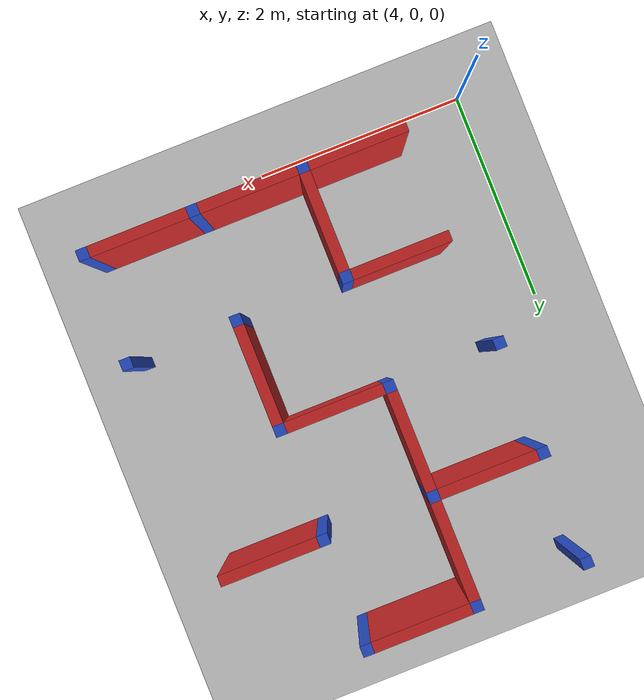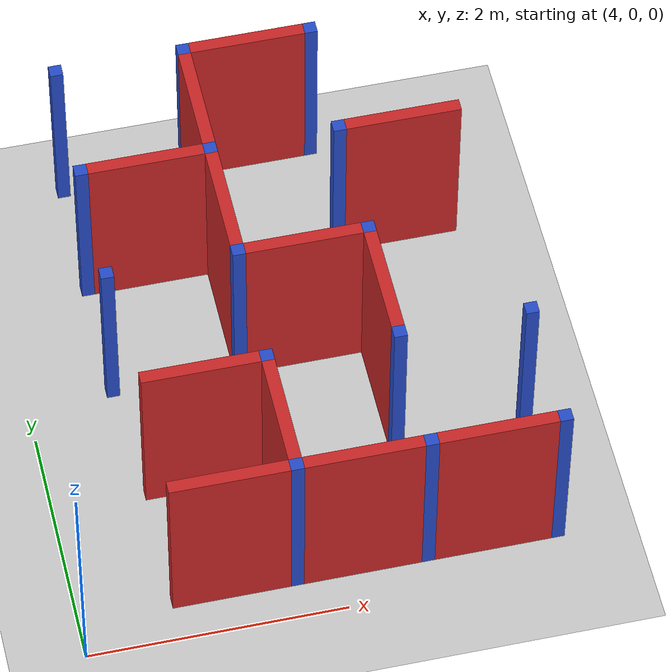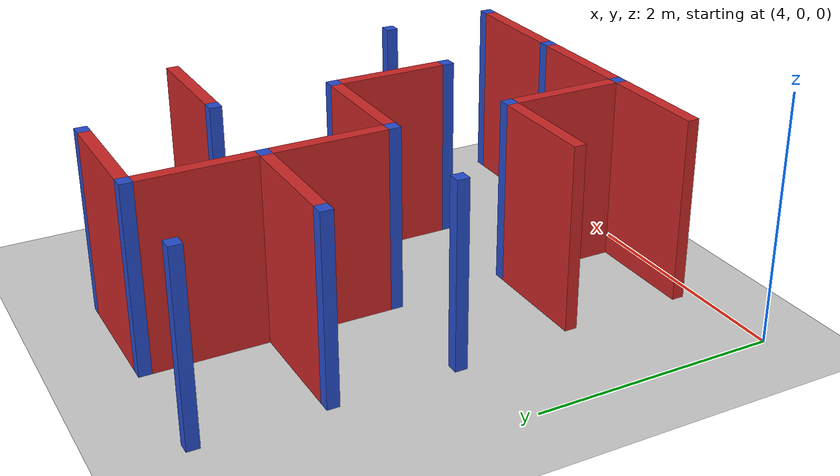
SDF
<sdf version="1.7">
 <world name="default">
  <model name="ground_plane">
   <static>1</static>
   <link name="link">
    <collision name="collision">
     <geometry><plane><normal>0 0 1</normal><size>100 100</size></plane></geometry>
     <surface><friction><ode><mu>100</mu><mu2>50</mu2></ode></friction></surface>
    </collision>
    <visual name="visual">
     <cast_shadows>0</cast_shadows>
     <geometry><plane><normal>0 0 1</normal><size>100 100</size></plane></geometry>
     <material>
      <script><uri>file://media/materials/scripts/gazebo.material</uri><name>Gazebo/Grey</name></script>
     </material>
    </visual>
   </link>
  </model>
  <model name="maze_demo">
   <link name="Joint_10_-11">
    <pose>10 -11 0 0 -0 0</pose>
    <visual name="Wall_2_Visual">
     <pose>0 0 0.75 0 -0 0</pose>
     <geometry><box><size>0.1 0.1 1.5</size></box></geometry>
     <material>
      <script><uri>file://media/materials/scripts/gazebo.material</uri><name>Gazebo/Blue</name></script>
      <ambient>0.996078 0.47451 0.0196078 1</ambient>
      <shader type="pixel"/>
     </material>
     <meta><layer>0</layer></meta>
    </visual>
    <collision name="Wall_2_Collision">
     <pose>0 0 0.75 0 -0 0</pose>
     <geometry><box><size>0.1 0.1 1.5</size></box></geometry>
     <surface>
      <friction>
       <ode><mu>1</mu><mu2>1</mu2><fdir1>0 0 0</fdir1><slip1>0</slip1><slip2>0</slip2></ode>
       <torsional>
        <coefficient>1</coefficient>
        <patch_radius>0</patch_radius>
        <surface_radius>0</surface_radius>
        <use_patch_radius>1</use_patch_radius>
        <ode><slip>0</slip></ode>
       </torsional>
      </friction>
      <bounce><restitution_coefficient>0</restitution_coefficient><threshold>1e+06</threshold></bounce>
      <contact>
       <collide_without_contact>0</collide_without_contact>
       <collide_without_contact_bitmask>1</collide_without_contact_bitmask>
       <collide_bitmask>1</collide_bitmask>
       <ode>
        <soft_cfm>0</soft_cfm>
        <soft_erp>0.2</soft_erp>
        <kp>1e+13</kp>
        <kd>1</kd>
        <max_vel>0.01</max_vel>
        <min_depth>0</min_depth>
       </ode>
       <bullet>
        <split_impulse>1</split_impulse>
        <split_impulse_penetration_threshold>-0.01</split_impulse_penetration_threshold>
        <soft_cfm>0</soft_cfm>
        <soft_erp>0.2</soft_erp>
        <kp>1e+13</kp>
        <kd>1</kd>
       </bullet>
      </contact>
     </surface>
    </collision>
   </link>
   <link name="Joint_10_-12">
    <pose>10 -12 0 0 -0 0</pose>
    <visual name="Wall_2_Visual">
     <pose>0 0 0.75 0 -0 0</pose>
     <geometry><box><size>0.1 0.1 1.5</size></box></geometry>
     <material>
      <script><uri>file://media/materials/scripts/gazebo.material</uri><name>Gazebo/Blue</name></script>
      <ambient>0.996078 0.47451 0.0196078 1</ambient>
      <shader type="pixel"/>
     </material>
     <meta><layer>0</layer></meta>
    </visual>
    <collision name="Wall_2_Collision">
     <pose>0 0 0.75 0 -0 0</pose>
     <geometry><box><size>0.1 0.1 1.5</size></box></geometry>
     <surface>
      <friction>
       <ode><mu>1</mu><mu2>1</mu2><fdir1>0 0 0</fdir1><slip1>0</slip1><slip2>0</slip2></ode>
       <torsional>
        <coefficient>1</coefficient>
        <patch_radius>0</patch_radius>
        <surface_radius>0</surface_radius>
        <use_patch_radius>1</use_patch_radius>
        <ode><slip>0</slip></ode>
       </torsional>
      </friction>
      <bounce><restitution_coefficient>0</restitution_coefficient><threshold>1e+06</threshold></bounce>
      <contact>
       <collide_without_contact>0</collide_without_contact>
       <collide_without_contact_bitmask>1</collide_without_contact_bitmask>
       <collide_bitmask>1</collide_bitmask>
       <ode>
        <soft_cfm>0</soft_cfm>
        <soft_erp>0.2</soft_erp>
        <kp>1e+13</kp>
        <kd>1</kd>
        <max_vel>0.01</max_vel>
        <min_depth>0</min_depth>
       </ode>
       <bullet>
        <split_impulse>1</split_impulse>
        <split_impulse_penetration_threshold>-0.01</split_impulse_penetration_threshold>
        <soft_cfm>0</soft_cfm>
        <soft_erp>0.2</soft_erp>
        <kp>1e+13</kp>
        <kd>1</kd>
       </bullet>
      </contact>
     </surface>
    </collision>
   </link>
   <link name="Joint_10_-13">
    <pose>10 -13 0 0 -0 0</pose>
    <visual name="Wall_2_Visual">
     <pose>0 0 0.75 0 -0 0</pose>
     <geometry><box><size>0.1 0.1 1.5</size></box></geometry>
     <material>
      <script><uri>file://media/materials/scripts/gazebo.material</uri><name>Gazebo/Blue</name></script>
      <ambient>0.996078 0.47451 0.0196078 1</ambient>
      <shader type="pixel"/>
     </material>
     <meta><layer>0</layer></meta>
    </visual>
    <collision name="Wall_2_Collision">
     <pose>0 0 0.75 0 -0 0</pose>
     <geometry><box><size>0.1 0.1 1.5</size></box></geometry>
     <surface>
      <friction>
       <ode><mu>1</mu><mu2>1</mu2><fdir1>0 0 0</fdir1><slip1>0</slip1><slip2>0</slip2></ode>
       <torsional>
        <coefficient>1</coefficient>
        <patch_radius>0</patch_radius>
        <surface_radius>0</surface_radius>
        <use_patch_radius>1</use_patch_radius>
        <ode><slip>0</slip></ode>
       </torsional>
      </friction>
      <bounce><restitution_coefficient>0</restitution_coefficient><threshold>1e+06</threshold></bounce>
      <contact>
       <collide_without_contact>0</collide_without_contact>
       <collide_without_contact_bitmask>1</collide_without_contact_bitmask>
       <collide_bitmask>1</collide_bitmask>
       <ode>
        <soft_cfm>0</soft_cfm>
        <soft_erp>0.2</soft_erp>
        <kp>1e+13</kp>
        <kd>1</kd>
        <max_vel>0.01</max_vel>
        <min_depth>0</min_depth>
       </ode>
       <bullet>
        <split_impulse>1</split_impulse>
        <split_impulse_penetration_threshold>-0.01</split_impulse_penetration_threshold>
        <soft_cfm>0</soft_cfm>
        <soft_erp>0.2</soft_erp>
        <kp>1e+13</kp>
        <kd>1</kd>
       </bullet>
      </contact>
     </surface>
    </collision>
   </link>
   <link name="Joint_11_-11">
    <pose>11 -11 0 0 -0 0</pose>
    <visual name="Wall_2_Visual">
     <pose>0 0 0.75 0 -0 0</pose>
     <geometry><box><size>0.1 0.1 1.5</size></box></geometry>
     <material>
      <script><uri>file://media/materials/scripts/gazebo.material</uri><name>Gazebo/Blue</name></script>
      <ambient>0.996078 0.47451 0.0196078 1</ambient>
      <shader type="pixel"/>
     </material>
     <meta><layer>0</layer></meta>
    </visual>
    <collision name="Wall_2_Collision">
     <pose>0 0 0.75 0 -0 0</pose>
     <geometry><box><size>0.1 0.1 1.5</size></box></geometry>
     <surface>
      <friction>
       <ode><mu>1</mu><mu2>1</mu2><fdir1>0 0 0</fdir1><slip1>0</slip1><slip2>0</slip2></ode>
       <torsional>
        <coefficient>1</coefficient>
        <patch_radius>0</patch_radius>
        <surface_radius>0</surface_radius>
        <use_patch_radius>1</use_patch_radius>
        <ode><slip>0</slip></ode>
       </torsional>
      </friction>
      <bounce><restitution_coefficient>0</restitution_coefficient><threshold>1e+06</threshold></bounce>
      <contact>
       <collide_without_contact>0</collide_without_contact>
       <collide_without_contact_bitmask>1</collide_without_contact_bitmask>
       <collide_bitmask>1</collide_bitmask>
       <ode>
        <soft_cfm>0</soft_cfm>
        <soft_erp>0.2</soft_erp>
        <kp>1e+13</kp>
        <kd>1</kd>
        <max_vel>0.01</max_vel>
        <min_depth>0</min_depth>
       </ode>
       <bullet>
        <split_impulse>1</split_impulse>
        <split_impulse_penetration_threshold>-0.01</split_impulse_penetration_threshold>
        <soft_cfm>0</soft_cfm>
        <soft_erp>0.2</soft_erp>
        <kp>1e+13</kp>
        <kd>1</kd>
       </bullet>
      </contact>
     </surface>
    </collision>
   </link>
   <link name="Joint_11_-12">
    <pose>11 -12 0 0 -0 0</pose>
    <visual name="Wall_2_Visual">
     <pose>0 0 0.75 0 -0 0</pose>
     <geometry><box><size>0.1 0.1 1.5</size></box></geometry>
     <material>
      <script><uri>file://media/materials/scripts/gazebo.material</uri><name>Gazebo/Blue</name></script>
      <ambient>0.996078 0.47451 0.0196078 1</ambient>
      <shader type="pixel"/>
     </material>
     <meta><layer>0</layer></meta>
    </visual>
    <collision name="Wall_2_Collision">
     <pose>0 0 0.75 0 -0 0</pose>
     <geometry><box><size>0.1 0.1 1.5</size></box></geometry>
     <surface>
      <friction>
       <ode><mu>1</mu><mu2>1</mu2><fdir1>0 0 0</fdir1><slip1>0</slip1><slip2>0</slip2></ode>
       <torsional>
        <coefficient>1</coefficient>
        <patch_radius>0</patch_radius>
        <surface_radius>0</surface_radius>
        <use_patch_radius>1</use_patch_radius>
        <ode><slip>0</slip></ode>
       </torsional>
      </friction>
      <bounce><restitution_coefficient>0</restitution_coefficient><threshold>1e+06</threshold></bounce>
      <contact>
       <collide_without_contact>0</collide_without_contact>
       <collide_without_contact_bitmask>1</collide_without_contact_bitmask>
       <collide_bitmask>1</collide_bitmask>
       <ode>
        <soft_cfm>0</soft_cfm>
        <soft_erp>0.2</soft_erp>
        <kp>1e+13</kp>
        <kd>1</kd>
        <max_vel>0.01</max_vel>
        <min_depth>0</min_depth>
       </ode>
       <bullet>
        <split_impulse>1</split_impulse>
        <split_impulse_penetration_threshold>-0.01</split_impulse_penetration_threshold>
        <soft_cfm>0</soft_cfm>
        <soft_erp>0.2</soft_erp>
        <kp>1e+13</kp>
        <kd>1</kd>
       </bullet>
      </contact>
     </surface>
    </collision>
   </link>
   <link name="Joint_11_-13">
    <pose>11 -13 0 0 -0 0</pose>
    <visual name="Wall_2_Visual">
     <pose>0 0 0.75 0 -0 0</pose>
     <geometry><box><size>0.1 0.1 1.5</size></box></geometry>
     <material>
      <script><uri>file://media/materials/scripts/gazebo.material</uri><name>Gazebo/Blue</name></script>
      <ambient>0.996078 0.47451 0.0196078 1</ambient>
      <shader type="pixel"/>
     </material>
     <meta><layer>0</layer></meta>
    </visual>
    <collision name="Wall_2_Collision">
     <pose>0 0 0.75 0 -0 0</pose>
     <geometry><box><size>0.1 0.1 1.5</size></box></geometry>
     <surface>
      <friction>
       <ode><mu>1</mu><mu2>1</mu2><fdir1>0 0 0</fdir1><slip1>0</slip1><slip2>0</slip2></ode>
       <torsional>
        <coefficient>1</coefficient>
        <patch_radius>0</patch_radius>
        <surface_radius>0</surface_radius>
        <use_patch_radius>1</use_patch_radius>
        <ode><slip>0</slip></ode>
       </torsional>
      </friction>
      <bounce><restitution_coefficient>0</restitution_coefficient><threshold>1e+06</threshold></bounce>
      <contact>
       <collide_without_contact>0</collide_without_contact>
       <collide_without_contact_bitmask>1</collide_without_contact_bitmask>
       <collide_bitmask>1</collide_bitmask>
       <ode>
        <soft_cfm>0</soft_cfm>
        <soft_erp>0.2</soft_erp>
        <kp>1e+13</kp>
        <kd>1</kd>
        <max_vel>0.01</max_vel>
        <min_depth>0</min_depth>
       </ode>
       <bullet>
        <split_impulse>1</split_impulse>
        <split_impulse_penetration_threshold>-0.01</split_impulse_penetration_threshold>
        <soft_cfm>0</soft_cfm>
        <soft_erp>0.2</soft_erp>
        <kp>1e+13</kp>
        <kd>1</kd>
       </bullet>
      </contact>
     </surface>
    </collision>
   </link>
   <link name="Joint_11_-14">
    <pose>11 -14 0 0 -0 0</pose>
    <visual name="Wall_2_Visual">
     <pose>0 0 0.75 0 -0 0</pose>
     <geometry><box><size>0.1 0.1 1.5</size></box></geometry>
     <material>
      <script><uri>file://media/materials/scripts/gazebo.material</uri><name>Gazebo/Blue</name></script>
      <ambient>0.996078 0.47451 0.0196078 1</ambient>
      <shader type="pixel"/>
     </material>
     <meta><layer>0</layer></meta>
    </visual>
    <collision name="Wall_2_Collision">
     <pose>0 0 0.75 0 -0 0</pose>
     <geometry><box><size>0.1 0.1 1.5</size></box></geometry>
     <surface>
      <friction>
       <ode><mu>1</mu><mu2>1</mu2><fdir1>0 0 0</fdir1><slip1>0</slip1><slip2>0</slip2></ode>
       <torsional>
        <coefficient>1</coefficient>
        <patch_radius>0</patch_radius>
        <surface_radius>0</surface_radius>
        <use_patch_radius>1</use_patch_radius>
        <ode><slip>0</slip></ode>
       </torsional>
      </friction>
      <bounce><restitution_coefficient>0</restitution_coefficient><threshold>1e+06</threshold></bounce>
      <contact>
       <collide_without_contact>0</collide_without_contact>
       <collide_without_contact_bitmask>1</collide_without_contact_bitmask>
       <collide_bitmask>1</collide_bitmask>
       <ode>
        <soft_cfm>0</soft_cfm>
        <soft_erp>0.2</soft_erp>
        <kp>1e+13</kp>
        <kd>1</kd>
        <max_vel>0.01</max_vel>
        <min_depth>0</min_depth>
       </ode>
       <bullet>
        <split_impulse>1</split_impulse>
        <split_impulse_penetration_threshold>-0.01</split_impulse_penetration_threshold>
        <soft_cfm>0</soft_cfm>
        <soft_erp>0.2</soft_erp>
        <kp>1e+13</kp>
        <kd>1</kd>
       </bullet>
      </contact>
     </surface>
    </collision>
   </link>
   <link name="Joint_11_-15">
    <pose>11 -15 0 0 -0 0</pose>
    <visual name="Wall_2_Visual">
     <pose>0 0 0.75 0 -0 0</pose>
     <geometry><box><size>0.1 0.1 1.5</size></box></geometry>
     <material>
      <script><uri>file://media/materials/scripts/gazebo.material</uri><name>Gazebo/Blue</name></script>
      <ambient>0.996078 0.47451 0.0196078 1</ambient>
      <shader type="pixel"/>
     </material>
     <meta><layer>0</layer></meta>
    </visual>
    <collision name="Wall_2_Collision">
     <pose>0 0 0.75 0 -0 0</pose>
     <geometry><box><size>0.1 0.1 1.5</size></box></geometry>
     <surface>
      <friction>
       <ode><mu>1</mu><mu2>1</mu2><fdir1>0 0 0</fdir1><slip1>0</slip1><slip2>0</slip2></ode>
       <torsional>
        <coefficient>1</coefficient>
        <patch_radius>0</patch_radius>
        <surface_radius>0</surface_radius>
        <use_patch_radius>1</use_patch_radius>
        <ode><slip>0</slip></ode>
       </torsional>
      </friction>
      <bounce><restitution_coefficient>0</restitution_coefficient><threshold>1e+06</threshold></bounce>
      <contact>
       <collide_without_contact>0</collide_without_contact>
       <collide_without_contact_bitmask>1</collide_without_contact_bitmask>
       <collide_bitmask>1</collide_bitmask>
       <ode>
        <soft_cfm>0</soft_cfm>
        <soft_erp>0.2</soft_erp>
        <kp>1e+13</kp>
        <kd>1</kd>
        <max_vel>0.01</max_vel>
        <min_depth>0</min_depth>
       </ode>
       <bullet>
        <split_impulse>1</split_impulse>
        <split_impulse_penetration_threshold>-0.01</split_impulse_penetration_threshold>
        <soft_cfm>0</soft_cfm>
        <soft_erp>0.2</soft_erp>
        <kp>1e+13</kp>
        <kd>1</kd>
       </bullet>
      </contact>
     </surface>
    </collision>
   </link>
   <link name="Joint_12_-11">
    <pose>12 -11 0 0 -0 0</pose>
    <visual name="Wall_2_Visual">
     <pose>0 0 0.75 0 -0 0</pose>
     <geometry><box><size>0.1 0.1 1.5</size></box></geometry>
     <material>
      <script><uri>file://media/materials/scripts/gazebo.material</uri><name>Gazebo/Blue</name></script>
      <ambient>0.996078 0.47451 0.0196078 1</ambient>
      <shader type="pixel"/>
     </material>
     <meta><layer>0</layer></meta>
    </visual>
    <collision name="Wall_2_Collision">
     <pose>0 0 0.75 0 -0 0</pose>
     <geometry><box><size>0.1 0.1 1.5</size></box></geometry>
     <surface>
      <friction>
       <ode><mu>1</mu><mu2>1</mu2><fdir1>0 0 0</fdir1><slip1>0</slip1><slip2>0</slip2></ode>
       <torsional>
        <coefficient>1</coefficient>
        <patch_radius>0</patch_radius>
        <surface_radius>0</surface_radius>
        <use_patch_radius>1</use_patch_radius>
        <ode><slip>0</slip></ode>
       </torsional>
      </friction>
      <bounce><restitution_coefficient>0</restitution_coefficient><threshold>1e+06</threshold></bounce>
      <contact>
       <collide_without_contact>0</collide_without_contact>
       <collide_without_contact_bitmask>1</collide_without_contact_bitmask>
       <collide_bitmask>1</collide_bitmask>
       <ode>
        <soft_cfm>0</soft_cfm>
        <soft_erp>0.2</soft_erp>
        <kp>1e+13</kp>
        <kd>1</kd>
        <max_vel>0.01</max_vel>
        <min_depth>0</min_depth>
       </ode>
       <bullet>
        <split_impulse>1</split_impulse>
        <split_impulse_penetration_threshold>-0.01</split_impulse_penetration_threshold>
        <soft_cfm>0</soft_cfm>
        <soft_erp>0.2</soft_erp>
        <kp>1e+13</kp>
        <kd>1</kd>
       </bullet>
      </contact>
     </surface>
    </collision>
   </link>
   <link name="Joint_12_-12">
    <pose>12 -12 0 0 -0 0</pose>
    <visual name="Wall_2_Visual">
     <pose>0 0 0.75 0 -0 0</pose>
     <geometry><box><size>0.1 0.1 1.5</size></box></geometry>
     <material>
      <script><uri>file://media/materials/scripts/gazebo.material</uri><name>Gazebo/Blue</name></script>
      <ambient>0.996078 0.47451 0.0196078 1</ambient>
      <shader type="pixel"/>
     </material>
     <meta><layer>0</layer></meta>
    </visual>
    <collision name="Wall_2_Collision">
     <pose>0 0 0.75 0 -0 0</pose>
     <geometry><box><size>0.1 0.1 1.5</size></box></geometry>
     <surface>
      <friction>
       <ode><mu>1</mu><mu2>1</mu2><fdir1>0 0 0</fdir1><slip1>0</slip1><slip2>0</slip2></ode>
       <torsional>
        <coefficient>1</coefficient>
        <patch_radius>0</patch_radius>
        <surface_radius>0</surface_radius>
        <use_patch_radius>1</use_patch_radius>
        <ode><slip>0</slip></ode>
       </torsional>
      </friction>
      <bounce><restitution_coefficient>0</restitution_coefficient><threshold>1e+06</threshold></bounce>
      <contact>
       <collide_without_contact>0</collide_without_contact>
       <collide_without_contact_bitmask>1</collide_without_contact_bitmask>
       <collide_bitmask>1</collide_bitmask>
       <ode>
        <soft_cfm>0</soft_cfm>
        <soft_erp>0.2</soft_erp>
        <kp>1e+13</kp>
        <kd>1</kd>
        <max_vel>0.01</max_vel>
        <min_depth>0</min_depth>
       </ode>
       <bullet>
        <split_impulse>1</split_impulse>
        <split_impulse_penetration_threshold>-0.01</split_impulse_penetration_threshold>
        <soft_cfm>0</soft_cfm>
        <soft_erp>0.2</soft_erp>
        <kp>1e+13</kp>
        <kd>1</kd>
       </bullet>
      </contact>
     </surface>
    </collision>
   </link>
   <link name="Joint_12_-13">
    <pose>12 -13 0 0 -0 0</pose>
    <visual name="Wall_2_Visual">
     <pose>0 0 0.75 0 -0 0</pose>
     <geometry><box><size>0.1 0.1 1.5</size></box></geometry>
     <material>
      <script><uri>file://media/materials/scripts/gazebo.material</uri><name>Gazebo/Blue</name></script>
      <ambient>0.996078 0.47451 0.0196078 1</ambient>
      <shader type="pixel"/>
     </material>
     <meta><layer>0</layer></meta>
    </visual>
    <collision name="Wall_2_Collision">
     <pose>0 0 0.75 0 -0 0</pose>
     <geometry><box><size>0.1 0.1 1.5</size></box></geometry>
     <surface>
      <friction>
       <ode><mu>1</mu><mu2>1</mu2><fdir1>0 0 0</fdir1><slip1>0</slip1><slip2>0</slip2></ode>
       <torsional>
        <coefficient>1</coefficient>
        <patch_radius>0</patch_radius>
        <surface_radius>0</surface_radius>
        <use_patch_radius>1</use_patch_radius>
        <ode><slip>0</slip></ode>
       </torsional>
      </friction>
      <bounce><restitution_coefficient>0</restitution_coefficient><threshold>1e+06</threshold></bounce>
      <contact>
       <collide_without_contact>0</collide_without_contact>
       <collide_without_contact_bitmask>1</collide_without_contact_bitmask>
       <collide_bitmask>1</collide_bitmask>
       <ode>
        <soft_cfm>0</soft_cfm>
        <soft_erp>0.2</soft_erp>
        <kp>1e+13</kp>
        <kd>1</kd>
        <max_vel>0.01</max_vel>
        <min_depth>0</min_depth>
       </ode>
       <bullet>
        <split_impulse>1</split_impulse>
        <split_impulse_penetration_threshold>-0.01</split_impulse_penetration_threshold>
        <soft_cfm>0</soft_cfm>
        <soft_erp>0.2</soft_erp>
        <kp>1e+13</kp>
        <kd>1</kd>
       </bullet>
      </contact>
     </surface>
    </collision>
   </link>
   <link name="Joint_12_-14">
    <pose>12 -14 0 0 -0 0</pose>
    <visual name="Wall_2_Visual">
     <pose>0 0 0.75 0 -0 0</pose>
     <geometry><box><size>0.1 0.1 1.5</size></box></geometry>
     <material>
      <script><uri>file://media/materials/scripts/gazebo.material</uri><name>Gazebo/Blue</name></script>
      <ambient>0.996078 0.47451 0.0196078 1</ambient>
      <shader type="pixel"/>
     </material>
     <meta><layer>0</layer></meta>
    </visual>
    <collision name="Wall_2_Collision">
     <pose>0 0 0.75 0 -0 0</pose>
     <geometry><box><size>0.1 0.1 1.5</size></box></geometry>
     <surface>
      <friction>
       <ode><mu>1</mu><mu2>1</mu2><fdir1>0 0 0</fdir1><slip1>0</slip1><slip2>0</slip2></ode>
       <torsional>
        <coefficient>1</coefficient>
        <patch_radius>0</patch_radius>
        <surface_radius>0</surface_radius>
        <use_patch_radius>1</use_patch_radius>
        <ode><slip>0</slip></ode>
       </torsional>
      </friction>
      <bounce><restitution_coefficient>0</restitution_coefficient><threshold>1e+06</threshold></bounce>
      <contact>
       <collide_without_contact>0</collide_without_contact>
       <collide_without_contact_bitmask>1</collide_without_contact_bitmask>
       <collide_bitmask>1</collide_bitmask>
       <ode>
        <soft_cfm>0</soft_cfm>
        <soft_erp>0.2</soft_erp>
        <kp>1e+13</kp>
        <kd>1</kd>
        <max_vel>0.01</max_vel>
        <min_depth>0</min_depth>
       </ode>
       <bullet>
        <split_impulse>1</split_impulse>
        <split_impulse_penetration_threshold>-0.01</split_impulse_penetration_threshold>
        <soft_cfm>0</soft_cfm>
        <soft_erp>0.2</soft_erp>
        <kp>1e+13</kp>
        <kd>1</kd>
       </bullet>
      </contact>
     </surface>
    </collision>
   </link>
   <link name="Joint_12_-15">
    <pose>12 -15 0 0 -0 0</pose>
    <visual name="Wall_2_Visual">
     <pose>0 0 0.75 0 -0 0</pose>
     <geometry><box><size>0.1 0.1 1.5</size></box></geometry>
     <material>
      <script><uri>file://media/materials/scripts/gazebo.material</uri><name>Gazebo/Blue</name></script>
      <ambient>0.996078 0.47451 0.0196078 1</ambient>
      <shader type="pixel"/>
     </material>
     <meta><layer>0</layer></meta>
    </visual>
    <collision name="Wall_2_Collision">
     <pose>0 0 0.75 0 -0 0</pose>
     <geometry><box><size>0.1 0.1 1.5</size></box></geometry>
     <surface>
      <friction>
       <ode><mu>1</mu><mu2>1</mu2><fdir1>0 0 0</fdir1><slip1>0</slip1><slip2>0</slip2></ode>
       <torsional>
        <coefficient>1</coefficient>
        <patch_radius>0</patch_radius>
        <surface_radius>0</surface_radius>
        <use_patch_radius>1</use_patch_radius>
        <ode><slip>0</slip></ode>
       </torsional>
      </friction>
      <bounce><restitution_coefficient>0</restitution_coefficient><threshold>1e+06</threshold></bounce>
      <contact>
       <collide_without_contact>0</collide_without_contact>
       <collide_without_contact_bitmask>1</collide_without_contact_bitmask>
       <collide_bitmask>1</collide_bitmask>
       <ode>
        <soft_cfm>0</soft_cfm>
        <soft_erp>0.2</soft_erp>
        <kp>1e+13</kp>
        <kd>1</kd>
        <max_vel>0.01</max_vel>
        <min_depth>0</min_depth>
       </ode>
       <bullet>
        <split_impulse>1</split_impulse>
        <split_impulse_penetration_threshold>-0.01</split_impulse_penetration_threshold>
        <soft_cfm>0</soft_cfm>
        <soft_erp>0.2</soft_erp>
        <kp>1e+13</kp>
        <kd>1</kd>
       </bullet>
      </contact>
     </surface>
    </collision>
   </link>
   <link name="Joint_13_-14">
    <pose>13 -14 0 0 -0 0</pose>
    <visual name="Wall_2_Visual">
     <pose>0 0 0.75 0 -0 0</pose>
     <geometry><box><size>0.1 0.1 1.5</size></box></geometry>
     <material>
      <script><uri>file://media/materials/scripts/gazebo.material</uri><name>Gazebo/Blue</name></script>
      <ambient>0.996078 0.47451 0.0196078 1</ambient>
      <shader type="pixel"/>
     </material>
     <meta><layer>0</layer></meta>
    </visual>
    <collision name="Wall_2_Collision">
     <pose>0 0 0.75 0 -0 0</pose>
     <geometry><box><size>0.1 0.1 1.5</size></box></geometry>
     <surface>
      <friction>
       <ode><mu>1</mu><mu2>1</mu2><fdir1>0 0 0</fdir1><slip1>0</slip1><slip2>0</slip2></ode>
       <torsional>
        <coefficient>1</coefficient>
        <patch_radius>0</patch_radius>
        <surface_radius>0</surface_radius>
        <use_patch_radius>1</use_patch_radius>
        <ode><slip>0</slip></ode>
       </torsional>
      </friction>
      <bounce><restitution_coefficient>0</restitution_coefficient><threshold>1e+06</threshold></bounce>
      <contact>
       <collide_without_contact>0</collide_without_contact>
       <collide_without_contact_bitmask>1</collide_without_contact_bitmask>
       <collide_bitmask>1</collide_bitmask>
       <ode>
        <soft_cfm>0</soft_cfm>
        <soft_erp>0.2</soft_erp>
        <kp>1e+13</kp>
        <kd>1</kd>
        <max_vel>0.01</max_vel>
        <min_depth>0</min_depth>
       </ode>
       <bullet>
        <split_impulse>1</split_impulse>
        <split_impulse_penetration_threshold>-0.01</split_impulse_penetration_threshold>
        <soft_cfm>0</soft_cfm>
        <soft_erp>0.2</soft_erp>
        <kp>1e+13</kp>
        <kd>1</kd>
       </bullet>
      </contact>
     </surface>
    </collision>
   </link>
   <link name="Joint_13_-15">
    <pose>13 -15 0 0 -0 0</pose>
    <visual name="Wall_2_Visual">
     <pose>0 0 0.75 0 -0 0</pose>
     <geometry><box><size>0.1 0.1 1.5</size></box></geometry>
     <material>
      <script><uri>file://media/materials/scripts/gazebo.material</uri><name>Gazebo/Blue</name></script>
      <ambient>0.996078 0.47451 0.0196078 1</ambient>
      <shader type="pixel"/>
     </material>
     <meta><layer>0</layer></meta>
    </visual>
    <collision name="Wall_2_Collision">
     <pose>0 0 0.75 0 -0 0</pose>
     <geometry><box><size>0.1 0.1 1.5</size></box></geometry>
     <surface>
      <friction>
       <ode><mu>1</mu><mu2>1</mu2><fdir1>0 0 0</fdir1><slip1>0</slip1><slip2>0</slip2></ode>
       <torsional>
        <coefficient>1</coefficient>
        <patch_radius>0</patch_radius>
        <surface_radius>0</surface_radius>
        <use_patch_radius>1</use_patch_radius>
        <ode><slip>0</slip></ode>
       </torsional>
      </friction>
      <bounce><restitution_coefficient>0</restitution_coefficient><threshold>1e+06</threshold></bounce>
      <contact>
       <collide_without_contact>0</collide_without_contact>
       <collide_without_contact_bitmask>1</collide_without_contact_bitmask>
       <collide_bitmask>1</collide_bitmask>
       <ode>
        <soft_cfm>0</soft_cfm>
        <soft_erp>0.2</soft_erp>
        <kp>1e+13</kp>
        <kd>1</kd>
        <max_vel>0.01</max_vel>
        <min_depth>0</min_depth>
       </ode>
       <bullet>
        <split_impulse>1</split_impulse>
        <split_impulse_penetration_threshold>-0.01</split_impulse_penetration_threshold>
        <soft_cfm>0</soft_cfm>
        <soft_erp>0.2</soft_erp>
        <kp>1e+13</kp>
        <kd>1</kd>
       </bullet>
      </contact>
     </surface>
    </collision>
   </link>
   <link name="Wall_10_12_h">
    <pose>10.5 -12 0 0 -0 0</pose>
    <visual name="Wall_0_Visual">
     <pose>0 0 0.75 0 -0 0</pose>
     <geometry><box><size>0.9 0.1 1.5</size></box></geometry>
     <material>
      <script><uri>file://media/materials/scripts/gazebo.material</uri><name>Gazebo/Red</name></script>
      <ambient>0.921569 0.807843 0.615686 1</ambient>
      <shader type="pixel"/>
     </material>
     <meta><layer>0</layer></meta>
    </visual>
    <collision name="Wall_0_Collision">
     <pose>0 0 0.75 0 -0 0</pose>
     <geometry><box><size>0.9 0.1 1.5</size></box></geometry>
     <surface>
      <friction>
       <ode><mu>1</mu><mu2>1</mu2><fdir1>0 0 0</fdir1><slip1>0</slip1><slip2>0</slip2></ode>
       <torsional>
        <coefficient>1</coefficient>
        <patch_radius>0</patch_radius>
        <surface_radius>0</surface_radius>
        <use_patch_radius>1</use_patch_radius>
        <ode><slip>0</slip></ode>
       </torsional>
      </friction>
      <bounce><restitution_coefficient>0</restitution_coefficient><threshold>1e+06</threshold></bounce>
      <contact>
       <collide_without_contact>0</collide_without_contact>
       <collide_without_contact_bitmask>1</collide_without_contact_bitmask>
       <collide_bitmask>1</collide_bitmask>
       <ode>
        <soft_cfm>0</soft_cfm>
        <soft_erp>0.2</soft_erp>
        <kp>1e+13</kp>
        <kd>1</kd>
        <max_vel>0.01</max_vel>
        <min_depth>0</min_depth>
       </ode>
       <bullet>
        <split_impulse>1</split_impulse>
        <split_impulse_penetration_threshold>-0.01</split_impulse_penetration_threshold>
        <soft_cfm>0</soft_cfm>
        <soft_erp>0.2</soft_erp>
        <kp>1e+13</kp>
        <kd>1</kd>
       </bullet>
      </contact>
     </surface>
    </collision>
   </link>
   <link name="Wall_10_14_h">
    <pose>10.5 -14 0 0 -0 0</pose>
    <visual name="Wall_0_Visual">
     <pose>0 0 0.75 0 -0 0</pose>
     <geometry><box><size>0.9 0.1 1.5</size></box></geometry>
     <material>
      <script><uri>file://media/materials/scripts/gazebo.material</uri><name>Gazebo/Red</name></script>
      <ambient>0.921569 0.807843 0.615686 1</ambient>
      <shader type="pixel"/>
     </material>
     <meta><layer>0</layer></meta>
    </visual>
    <collision name="Wall_0_Collision">
     <pose>0 0 0.75 0 -0 0</pose>
     <geometry><box><size>0.9 0.1 1.5</size></box></geometry>
     <surface>
      <friction>
       <ode><mu>1</mu><mu2>1</mu2><fdir1>0 0 0</fdir1><slip1>0</slip1><slip2>0</slip2></ode>
       <torsional>
        <coefficient>1</coefficient>
        <patch_radius>0</patch_radius>
        <surface_radius>0</surface_radius>
        <use_patch_radius>1</use_patch_radius>
        <ode><slip>0</slip></ode>
       </torsional>
      </friction>
      <bounce><restitution_coefficient>0</restitution_coefficient><threshold>1e+06</threshold></bounce>
      <contact>
       <collide_without_contact>0</collide_without_contact>
       <collide_without_contact_bitmask>1</collide_without_contact_bitmask>
       <collide_bitmask>1</collide_bitmask>
       <ode>
        <soft_cfm>0</soft_cfm>
        <soft_erp>0.2</soft_erp>
        <kp>1e+13</kp>
        <kd>1</kd>
        <max_vel>0.01</max_vel>
        <min_depth>0</min_depth>
       </ode>
       <bullet>
        <split_impulse>1</split_impulse>
        <split_impulse_penetration_threshold>-0.01</split_impulse_penetration_threshold>
        <soft_cfm>0</soft_cfm>
        <soft_erp>0.2</soft_erp>
        <kp>1e+13</kp>
        <kd>1</kd>
       </bullet>
      </contact>
     </surface>
    </collision>
   </link>
   <link name="Wall_10_15_h">
    <pose>10.5 -15 0 0 -0 0</pose>
    <visual name="Wall_0_Visual">
     <pose>0 0 0.75 0 -0 0</pose>
     <geometry><box><size>0.9 0.1 1.5</size></box></geometry>
     <material>
      <script><uri>file://media/materials/scripts/gazebo.material</uri><name>Gazebo/Red</name></script>
      <ambient>0.921569 0.807843 0.615686 1</ambient>
      <shader type="pixel"/>
     </material>
     <meta><layer>0</layer></meta>
    </visual>
    <collision name="Wall_0_Collision">
     <pose>0 0 0.75 0 -0 0</pose>
     <geometry><box><size>0.9 0.1 1.5</size></box></geometry>
     <surface>
      <friction>
       <ode><mu>1</mu><mu2>1</mu2><fdir1>0 0 0</fdir1><slip1>0</slip1><slip2>0</slip2></ode>
       <torsional>
        <coefficient>1</coefficient>
        <patch_radius>0</patch_radius>
        <surface_radius>0</surface_radius>
        <use_patch_radius>1</use_patch_radius>
        <ode><slip>0</slip></ode>
       </torsional>
      </friction>
      <bounce><restitution_coefficient>0</restitution_coefficient><threshold>1e+06</threshold></bounce>
      <contact>
       <collide_without_contact>0</collide_without_contact>
       <collide_without_contact_bitmask>1</collide_without_contact_bitmask>
       <collide_bitmask>1</collide_bitmask>
       <ode>
        <soft_cfm>0</soft_cfm>
        <soft_erp>0.2</soft_erp>
        <kp>1e+13</kp>
        <kd>1</kd>
        <max_vel>0.01</max_vel>
        <min_depth>0</min_depth>
       </ode>
       <bullet>
        <split_impulse>1</split_impulse>
        <split_impulse_penetration_threshold>-0.01</split_impulse_penetration_threshold>
        <soft_cfm>0</soft_cfm>
        <soft_erp>0.2</soft_erp>
        <kp>1e+13</kp>
        <kd>1</kd>
       </bullet>
      </contact>
     </surface>
    </collision>
   </link>
   <link name="Wall_11_11_h">
    <pose>11.5 -11 0 0 -0 0</pose>
    <visual name="Wall_0_Visual">
     <pose>0 0 0.75 0 -0 0</pose>
     <geometry><box><size>0.9 0.1 1.5</size></box></geometry>
     <material>
      <script><uri>file://media/materials/scripts/gazebo.material</uri><name>Gazebo/Red</name></script>
      <ambient>0.921569 0.807843 0.615686 1</ambient>
      <shader type="pixel"/>
     </material>
     <meta><layer>0</layer></meta>
    </visual>
    <collision name="Wall_0_Collision">
     <pose>0 0 0.75 0 -0 0</pose>
     <geometry><box><size>0.9 0.1 1.5</size></box></geometry>
     <surface>
      <friction>
       <ode><mu>1</mu><mu2>1</mu2><fdir1>0 0 0</fdir1><slip1>0</slip1><slip2>0</slip2></ode>
       <torsional>
        <coefficient>1</coefficient>
        <patch_radius>0</patch_radius>
        <surface_radius>0</surface_radius>
        <use_patch_radius>1</use_patch_radius>
        <ode><slip>0</slip></ode>
       </torsional>
      </friction>
      <bounce><restitution_coefficient>0</restitution_coefficient><threshold>1e+06</threshold></bounce>
      <contact>
       <collide_without_contact>0</collide_without_contact>
       <collide_without_contact_bitmask>1</collide_without_contact_bitmask>
       <collide_bitmask>1</collide_bitmask>
       <ode>
        <soft_cfm>0</soft_cfm>
        <soft_erp>0.2</soft_erp>
        <kp>1e+13</kp>
        <kd>1</kd>
        <max_vel>0.01</max_vel>
        <min_depth>0</min_depth>
       </ode>
       <bullet>
        <split_impulse>1</split_impulse>
        <split_impulse_penetration_threshold>-0.01</split_impulse_penetration_threshold>
        <soft_cfm>0</soft_cfm>
        <soft_erp>0.2</soft_erp>
        <kp>1e+13</kp>
        <kd>1</kd>
       </bullet>
      </contact>
     </surface>
    </collision>
   </link>
   <link name="Wall_11_11_v">
    <pose>11 -11.5 0 0 -0 1.5708</pose>
    <visual name="Wall_0_Visual">
     <pose>0 0 0.75 0 -0 0</pose>
     <geometry><box><size>0.9 0.1 1.5</size></box></geometry>
     <material>
      <script><uri>file://media/materials/scripts/gazebo.material</uri><name>Gazebo/Red</name></script>
      <ambient>0.921569 0.807843 0.615686 1</ambient>
      <shader type="pixel"/>
     </material>
     <meta><layer>0</layer></meta>
    </visual>
    <collision name="Wall_0_Collision">
     <pose>0 0 0.75 0 -0 0</pose>
     <geometry><box><size>0.9 0.1 1.5</size></box></geometry>
     <surface>
      <friction>
       <ode><mu>1</mu><mu2>1</mu2><fdir1>0 0 0</fdir1><slip1>0</slip1><slip2>0</slip2></ode>
       <torsional>
        <coefficient>1</coefficient>
        <patch_radius>0</patch_radius>
        <surface_radius>0</surface_radius>
        <use_patch_radius>1</use_patch_radius>
        <ode><slip>0</slip></ode>
       </torsional>
      </friction>
      <bounce><restitution_coefficient>0</restitution_coefficient><threshold>1e+06</threshold></bounce>
      <contact>
       <collide_without_contact>0</collide_without_contact>
       <collide_without_contact_bitmask>1</collide_without_contact_bitmask>
       <collide_bitmask>1</collide_bitmask>
       <ode>
        <soft_cfm>0</soft_cfm>
        <soft_erp>0.2</soft_erp>
        <kp>1e+13</kp>
        <kd>1</kd>
        <max_vel>0.01</max_vel>
        <min_depth>0</min_depth>
       </ode>
       <bullet>
        <split_impulse>1</split_impulse>
        <split_impulse_penetration_threshold>-0.01</split_impulse_penetration_threshold>
        <soft_cfm>0</soft_cfm>
        <soft_erp>0.2</soft_erp>
        <kp>1e+13</kp>
        <kd>1</kd>
       </bullet>
      </contact>
     </surface>
    </collision>
   </link>
   <link name="Wall_11_12_v">
    <pose>11 -12.5 0 0 -0 1.5708</pose>
    <visual name="Wall_0_Visual">
     <pose>0 0 0.75 0 -0 0</pose>
     <geometry><box><size>0.9 0.1 1.5</size></box></geometry>
     <material>
      <script><uri>file://media/materials/scripts/gazebo.material</uri><name>Gazebo/Red</name></script>
      <ambient>0.921569 0.807843 0.615686 1</ambient>
      <shader type="pixel"/>
     </material>
     <meta><layer>0</layer></meta>
    </visual>
    <collision name="Wall_0_Collision">
     <pose>0 0 0.75 0 -0 0</pose>
     <geometry><box><size>0.9 0.1 1.5</size></box></geometry>
     <surface>
      <friction>
       <ode><mu>1</mu><mu2>1</mu2><fdir1>0 0 0</fdir1><slip1>0</slip1><slip2>0</slip2></ode>
       <torsional>
        <coefficient>1</coefficient>
        <patch_radius>0</patch_radius>
        <surface_radius>0</surface_radius>
        <use_patch_radius>1</use_patch_radius>
        <ode><slip>0</slip></ode>
       </torsional>
      </friction>
      <bounce><restitution_coefficient>0</restitution_coefficient><threshold>1e+06</threshold></bounce>
      <contact>
       <collide_without_contact>0</collide_without_contact>
       <collide_without_contact_bitmask>1</collide_without_contact_bitmask>
       <collide_bitmask>1</collide_bitmask>
       <ode>
        <soft_cfm>0</soft_cfm>
        <soft_erp>0.2</soft_erp>
        <kp>1e+13</kp>
        <kd>1</kd>
        <max_vel>0.01</max_vel>
        <min_depth>0</min_depth>
       </ode>
       <bullet>
        <split_impulse>1</split_impulse>
        <split_impulse_penetration_threshold>-0.01</split_impulse_penetration_threshold>
        <soft_cfm>0</soft_cfm>
        <soft_erp>0.2</soft_erp>
        <kp>1e+13</kp>
        <kd>1</kd>
       </bullet>
      </contact>
     </surface>
    </collision>
   </link>
   <link name="Wall_11_13_h">
    <pose>11.5 -13 0 0 -0 0</pose>
    <visual name="Wall_0_Visual">
     <pose>0 0 0.75 0 -0 0</pose>
     <geometry><box><size>0.9 0.1 1.5</size></box></geometry>
     <material>
      <script><uri>file://media/materials/scripts/gazebo.material</uri><name>Gazebo/Red</name></script>
      <ambient>0.921569 0.807843 0.615686 1</ambient>
      <shader type="pixel"/>
     </material>
     <meta><layer>0</layer></meta>
    </visual>
    <collision name="Wall_0_Collision">
     <pose>0 0 0.75 0 -0 0</pose>
     <geometry><box><size>0.9 0.1 1.5</size></box></geometry>
     <surface>
      <friction>
       <ode><mu>1</mu><mu2>1</mu2><fdir1>0 0 0</fdir1><slip1>0</slip1><slip2>0</slip2></ode>
       <torsional>
        <coefficient>1</coefficient>
        <patch_radius>0</patch_radius>
        <surface_radius>0</surface_radius>
        <use_patch_radius>1</use_patch_radius>
        <ode><slip>0</slip></ode>
       </torsional>
      </friction>
      <bounce><restitution_coefficient>0</restitution_coefficient><threshold>1e+06</threshold></bounce>
      <contact>
       <collide_without_contact>0</collide_without_contact>
       <collide_without_contact_bitmask>1</collide_without_contact_bitmask>
       <collide_bitmask>1</collide_bitmask>
       <ode>
        <soft_cfm>0</soft_cfm>
        <soft_erp>0.2</soft_erp>
        <kp>1e+13</kp>
        <kd>1</kd>
        <max_vel>0.01</max_vel>
        <min_depth>0</min_depth>
       </ode>
       <bullet>
        <split_impulse>1</split_impulse>
        <split_impulse_penetration_threshold>-0.01</split_impulse_penetration_threshold>
        <soft_cfm>0</soft_cfm>
        <soft_erp>0.2</soft_erp>
        <kp>1e+13</kp>
        <kd>1</kd>
       </bullet>
      </contact>
     </surface>
    </collision>
   </link>
   <link name="Wall_11_14_v">
    <pose>11 -14.5 0 0 -0 1.5708</pose>
    <visual name="Wall_0_Visual">
     <pose>0 0 0.75 0 -0 0</pose>
     <geometry><box><size>0.9 0.1 1.5</size></box></geometry>
     <material>
      <script><uri>file://media/materials/scripts/gazebo.material</uri><name>Gazebo/Red</name></script>
      <ambient>0.921569 0.807843 0.615686 1</ambient>
      <shader type="pixel"/>
     </material>
     <meta><layer>0</layer></meta>
    </visual>
    <collision name="Wall_0_Collision">
     <pose>0 0 0.75 0 -0 0</pose>
     <geometry><box><size>0.9 0.1 1.5</size></box></geometry>
     <surface>
      <friction>
       <ode><mu>1</mu><mu2>1</mu2><fdir1>0 0 0</fdir1><slip1>0</slip1><slip2>0</slip2></ode>
       <torsional>
        <coefficient>1</coefficient>
        <patch_radius>0</patch_radius>
        <surface_radius>0</surface_radius>
        <use_patch_radius>1</use_patch_radius>
        <ode><slip>0</slip></ode>
       </torsional>
      </friction>
      <bounce><restitution_coefficient>0</restitution_coefficient><threshold>1e+06</threshold></bounce>
      <contact>
       <collide_without_contact>0</collide_without_contact>
       <collide_without_contact_bitmask>1</collide_without_contact_bitmask>
       <collide_bitmask>1</collide_bitmask>
       <ode>
        <soft_cfm>0</soft_cfm>
        <soft_erp>0.2</soft_erp>
        <kp>1e+13</kp>
        <kd>1</kd>
        <max_vel>0.01</max_vel>
        <min_depth>0</min_depth>
       </ode>
       <bullet>
        <split_impulse>1</split_impulse>
        <split_impulse_penetration_threshold>-0.01</split_impulse_penetration_threshold>
        <soft_cfm>0</soft_cfm>
        <soft_erp>0.2</soft_erp>
        <kp>1e+13</kp>
        <kd>1</kd>
       </bullet>
      </contact>
     </surface>
    </collision>
   </link>
   <link name="Wall_11_15_h">
    <pose>11.5 -15 0 0 -0 0</pose>
    <visual name="Wall_0_Visual">
     <pose>0 0 0.75 0 -0 0</pose>
     <geometry><box><size>0.9 0.1 1.5</size></box></geometry>
     <material>
      <script><uri>file://media/materials/scripts/gazebo.material</uri><name>Gazebo/Red</name></script>
      <ambient>0.921569 0.807843 0.615686 1</ambient>
      <shader type="pixel"/>
     </material>
     <meta><layer>0</layer></meta>
    </visual>
    <collision name="Wall_0_Collision">
     <pose>0 0 0.75 0 -0 0</pose>
     <geometry><box><size>0.9 0.1 1.5</size></box></geometry>
     <surface>
      <friction>
       <ode><mu>1</mu><mu2>1</mu2><fdir1>0 0 0</fdir1><slip1>0</slip1><slip2>0</slip2></ode>
       <torsional>
        <coefficient>1</coefficient>
        <patch_radius>0</patch_radius>
        <surface_radius>0</surface_radius>
        <use_patch_radius>1</use_patch_radius>
        <ode><slip>0</slip></ode>
       </torsional>
      </friction>
      <bounce><restitution_coefficient>0</restitution_coefficient><threshold>1e+06</threshold></bounce>
      <contact>
       <collide_without_contact>0</collide_without_contact>
       <collide_without_contact_bitmask>1</collide_without_contact_bitmask>
       <collide_bitmask>1</collide_bitmask>
       <ode>
        <soft_cfm>0</soft_cfm>
        <soft_erp>0.2</soft_erp>
        <kp>1e+13</kp>
        <kd>1</kd>
        <max_vel>0.01</max_vel>
        <min_depth>0</min_depth>
       </ode>
       <bullet>
        <split_impulse>1</split_impulse>
        <split_impulse_penetration_threshold>-0.01</split_impulse_penetration_threshold>
        <soft_cfm>0</soft_cfm>
        <soft_erp>0.2</soft_erp>
        <kp>1e+13</kp>
        <kd>1</kd>
       </bullet>
      </contact>
     </surface>
    </collision>
   </link>
   <link name="Wall_12_12_h">
    <pose>12.5 -12 0 0 -0 0</pose>
    <visual name="Wall_0_Visual">
     <pose>0 0 0.75 0 -0 0</pose>
     <geometry><box><size>0.9 0.1 1.5</size></box></geometry>
     <material>
      <script><uri>file://media/materials/scripts/gazebo.material</uri><name>Gazebo/Red</name></script>
      <ambient>0.921569 0.807843 0.615686 1</ambient>
      <shader type="pixel"/>
     </material>
     <meta><layer>0</layer></meta>
    </visual>
    <collision name="Wall_0_Collision">
     <pose>0 0 0.75 0 -0 0</pose>
     <geometry><box><size>0.9 0.1 1.5</size></box></geometry>
     <surface>
      <friction>
       <ode><mu>1</mu><mu2>1</mu2><fdir1>0 0 0</fdir1><slip1>0</slip1><slip2>0</slip2></ode>
       <torsional>
        <coefficient>1</coefficient>
        <patch_radius>0</patch_radius>
        <surface_radius>0</surface_radius>
        <use_patch_radius>1</use_patch_radius>
        <ode><slip>0</slip></ode>
       </torsional>
      </friction>
      <bounce><restitution_coefficient>0</restitution_coefficient><threshold>1e+06</threshold></bounce>
      <contact>
       <collide_without_contact>0</collide_without_contact>
       <collide_without_contact_bitmask>1</collide_without_contact_bitmask>
       <collide_bitmask>1</collide_bitmask>
       <ode>
        <soft_cfm>0</soft_cfm>
        <soft_erp>0.2</soft_erp>
        <kp>1e+13</kp>
        <kd>1</kd>
        <max_vel>0.01</max_vel>
        <min_depth>0</min_depth>
       </ode>
       <bullet>
        <split_impulse>1</split_impulse>
        <split_impulse_penetration_threshold>-0.01</split_impulse_penetration_threshold>
        <soft_cfm>0</soft_cfm>
        <soft_erp>0.2</soft_erp>
        <kp>1e+13</kp>
        <kd>1</kd>
       </bullet>
      </contact>
     </surface>
    </collision>
   </link>
   <link name="Wall_12_13_v">
    <pose>12 -13.5 0 0 -0 1.5708</pose>
    <visual name="Wall_0_Visual">
     <pose>0 0 0.75 0 -0 0</pose>
     <geometry><box><size>0.9 0.1 1.5</size></box></geometry>
     <material>
      <script><uri>file://media/materials/scripts/gazebo.material</uri><name>Gazebo/Red</name></script>
      <ambient>0.921569 0.807843 0.615686 1</ambient>
      <shader type="pixel"/>
     </material>
     <meta><layer>0</layer></meta>
    </visual>
    <collision name="Wall_0_Collision">
     <pose>0 0 0.75 0 -0 0</pose>
     <geometry><box><size>0.9 0.1 1.5</size></box></geometry>
     <surface>
      <friction>
       <ode><mu>1</mu><mu2>1</mu2><fdir1>0 0 0</fdir1><slip1>0</slip1><slip2>0</slip2></ode>
       <torsional>
        <coefficient>1</coefficient>
        <patch_radius>0</patch_radius>
        <surface_radius>0</surface_radius>
        <use_patch_radius>1</use_patch_radius>
        <ode><slip>0</slip></ode>
       </torsional>
      </friction>
      <bounce><restitution_coefficient>0</restitution_coefficient><threshold>1e+06</threshold></bounce>
      <contact>
       <collide_without_contact>0</collide_without_contact>
       <collide_without_contact_bitmask>1</collide_without_contact_bitmask>
       <collide_bitmask>1</collide_bitmask>
       <ode>
        <soft_cfm>0</soft_cfm>
        <soft_erp>0.2</soft_erp>
        <kp>1e+13</kp>
        <kd>1</kd>
        <max_vel>0.01</max_vel>
        <min_depth>0</min_depth>
       </ode>
       <bullet>
        <split_impulse>1</split_impulse>
        <split_impulse_penetration_threshold>-0.01</split_impulse_penetration_threshold>
        <soft_cfm>0</soft_cfm>
        <soft_erp>0.2</soft_erp>
        <kp>1e+13</kp>
        <kd>1</kd>
       </bullet>
      </contact>
     </surface>
    </collision>
   </link>
   <link name="Wall_12_15_h">
    <pose>12.5 -15 0 0 -0 0</pose>
    <visual name="Wall_0_Visual">
     <pose>0 0 0.75 0 -0 0</pose>
     <geometry><box><size>0.9 0.1 1.5</size></box></geometry>
     <material>
      <script><uri>file://media/materials/scripts/gazebo.material</uri><name>Gazebo/Red</name></script>
      <ambient>0.921569 0.807843 0.615686 1</ambient>
      <shader type="pixel"/>
     </material>
     <meta><layer>0</layer></meta>
    </visual>
    <collision name="Wall_0_Collision">
     <pose>0 0 0.75 0 -0 0</pose>
     <geometry><box><size>0.9 0.1 1.5</size></box></geometry>
     <surface>
      <friction>
       <ode><mu>1</mu><mu2>1</mu2><fdir1>0 0 0</fdir1><slip1>0</slip1><slip2>0</slip2></ode>
       <torsional>
        <coefficient>1</coefficient>
        <patch_radius>0</patch_radius>
        <surface_radius>0</surface_radius>
        <use_patch_radius>1</use_patch_radius>
        <ode><slip>0</slip></ode>
       </torsional>
      </friction>
      <bounce><restitution_coefficient>0</restitution_coefficient><threshold>1e+06</threshold></bounce>
      <contact>
       <collide_without_contact>0</collide_without_contact>
       <collide_without_contact_bitmask>1</collide_without_contact_bitmask>
       <collide_bitmask>1</collide_bitmask>
       <ode>
        <soft_cfm>0</soft_cfm>
        <soft_erp>0.2</soft_erp>
        <kp>1e+13</kp>
        <kd>1</kd>
        <max_vel>0.01</max_vel>
        <min_depth>0</min_depth>
       </ode>
       <bullet>
        <split_impulse>1</split_impulse>
        <split_impulse_penetration_threshold>-0.01</split_impulse_penetration_threshold>
        <soft_cfm>0</soft_cfm>
        <soft_erp>0.2</soft_erp>
        <kp>1e+13</kp>
        <kd>1</kd>
       </bullet>
      </contact>
     </surface>
    </collision>
   </link>
   <static>1</static>
   <pose>-5.34608 15.268 0.093198 0 -0 0</pose>
  </model>
 </world>
</sdf>
